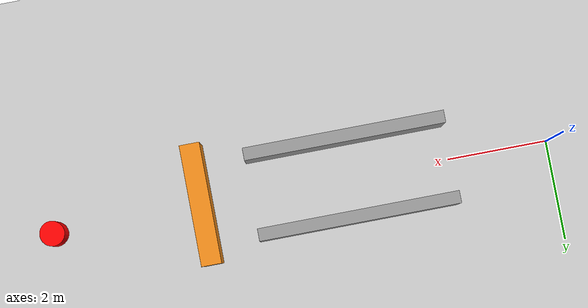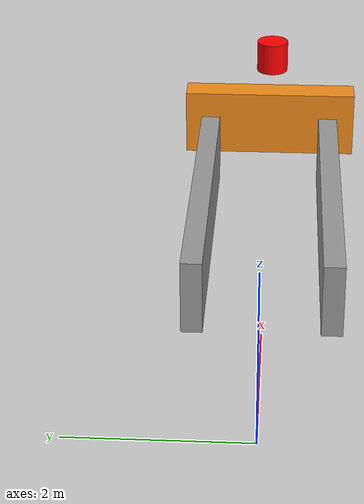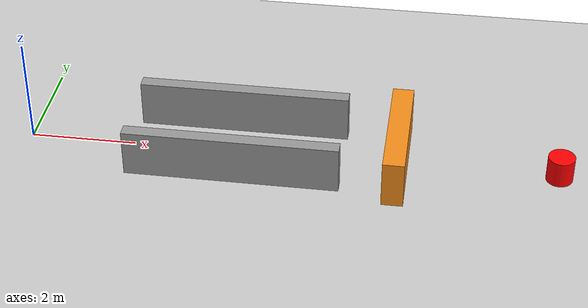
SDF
<?xml version="1.0" ?>
<sdf version="1.5">
  <world name="disaster_scene">
    <include>
      <uri>model://sun</uri>
    </include>
    <include>
      <uri>model://ground_plane</uri>
    </include>

    <physics type="ode">
      <max_step_size>0.001</max_step_size>
      <real_time_update_rate>1000</real_time_update_rate>
    </physics>

    <model name="narrow_passage_left">
      <static>true</static>
      <pose>4 0.8 0.45 0 0 0</pose>
      <link name="link">
        <collision name="collision">
          <geometry><box><size>4.0 0.25 0.9</size></box></geometry>
        </collision>
        <visual name="visual">
          <geometry><box><size>4.0 0.25 0.9</size></box></geometry>
          <material><script><uri>file://media/materials/scripts/gazebo.material</uri><name>Gazebo/Gray</name></script></material>
        </visual>
      </link>
    </model>

    <model name="narrow_passage_right">
      <static>true</static>
      <pose>4 -0.8 0.45 0 0 0</pose>
      <link name="link">
        <collision name="collision">
          <geometry><box><size>4.0 0.25 0.9</size></box></geometry>
        </collision>
        <visual name="visual">
          <geometry><box><size>4.0 0.25 0.9</size></box></geometry>
          <material><script><uri>file://media/materials/scripts/gazebo.material</uri><name>Gazebo/Gray</name></script></material>
        </visual>
      </link>
    </model>

    <model name="fly_over_barrier">
      <static>true</static>
      <pose>7 0 0.45 0 0 0</pose>
      <link name="link">
        <collision name="collision">
          <geometry><box><size>0.4 2.4 0.9</size></box></geometry>
        </collision>
        <visual name="visual">
          <geometry><box><size>0.4 2.4 0.9</size></box></geometry>
          <material><script><uri>file://media/materials/scripts/gazebo.material</uri><name>Gazebo/Orange</name></script></material>
        </visual>
      </link>
    </model>

    <model name="victim_marker">
      <static>true</static>
      <pose>10 0 0.25 0 0 0</pose>
      <link name="link">
        <visual name="visual">
          <geometry><cylinder><radius>0.25</radius><length>0.5</length></cylinder></geometry>
          <material><ambient>1 0 0 1</ambient><diffuse>1 0 0 1</diffuse></material>
        </visual>
      </link>
    </model>
  </world>
</sdf>
